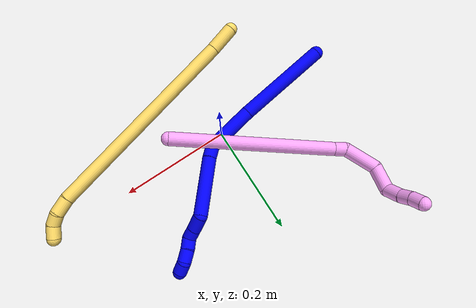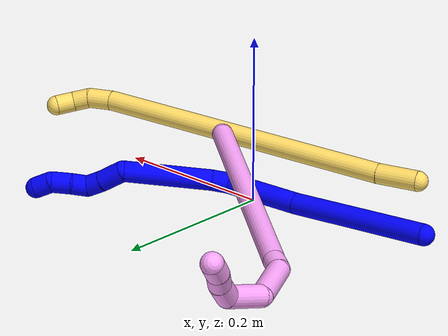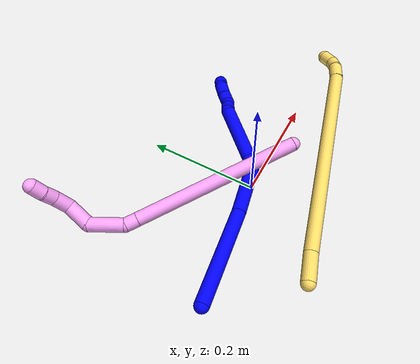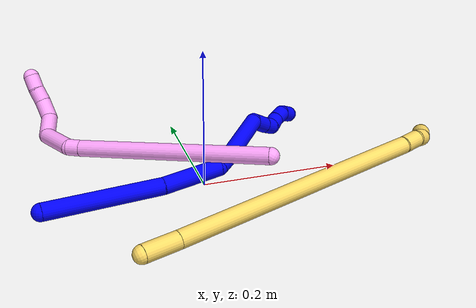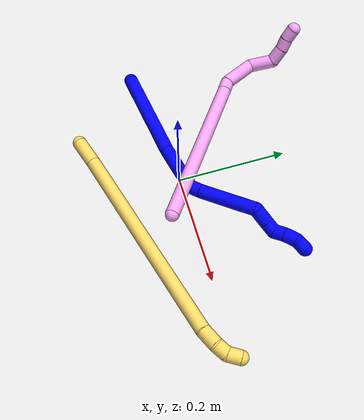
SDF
<sdf version="1.7">
 <world name="default">
  <model name="photoneo_s_sensor">
   <static>1</static>
   <pose>0 0 2 1.57079 1.57079 3.14159</pose>
   <link name="link">
    <inertial><mass>0.1</mass></inertial>
    <sensor name="sensor" type="depth">
     <update_rate>30</update_rate>
     <camera>
      <horizontal_fov>1.22</horizontal_fov>
      <image><width>1920</width><height>1200</height><format>B8G8R8</format></image>
      <clip><near>0.1</near><far>4</far></clip>
      <depth_camera><output>points</output></depth_camera>
     </camera>
     <plugin name="camera_plugin" filename="libgazebo_ros_depth_camera.so">
      <baseline>0.2</baseline>
      <alwaysOn>1</alwaysOn>
      <updateRate>0.0</updateRate>
      <cameraName>camera_ir</cameraName>
      <imageTopicName>/camera/color/image_raw</imageTopicName>
      <cameraInfoTopicName>/camera/color/camera_info</cameraInfoTopicName>
      <depthImageTopicName>/camera/depth/image_raw</depthImageTopicName>
      <depthImageCameraInfoTopicName>/camera/depth/camera_info</depthImageCameraInfoTopicName>
      <pointCloudTopicName>/camera/depth/points</pointCloudTopicName>
      <frameName>fr_optical</frameName>
      <pointCloudCutoff>0.1</pointCloudCutoff>
      <pointCloudCutoffMax>2.0</pointCloudCutoffMax>
      <distortionK1>0</distortionK1>
      <distortionK2>0</distortionK2>
      <distortionK3>0</distortionK3>
      <distortionT1>0</distortionT1>
      <distortionT2>0</distortionT2>
      <CxPrime>0</CxPrime>
      <Cx>0</Cx>
      <Cy>0</Cy>
      <focalLength>0</focalLength>
      <hackBaseline>0</hackBaseline>
     </plugin>
    </sensor>
   </link>
  </model>
  <model name="bin">
   <static>1</static>
   <link name="bottom">
    <collision name="collision-bottom">
     <pose>0 0 -0.01 0 -0 0</pose>
     <geometry><box><size>0.8 0.6 0.02</size></box></geometry>
     <surface>
      <friction><ode><mu>100</mu><mu2>100</mu2></ode></friction>
      <contact><collide_bitmask>65535</collide_bitmask></contact>
     </surface>
    </collision>
   </link>
   <link name="west_wall">
    <collision name="collision-west_wall">
     <pose>-0.41 0 0.1 0 -0 0</pose>
     <geometry><box><size>0.02 0.6 0.2</size></box></geometry>
     <surface>
      <friction><ode><mu>100</mu><mu2>100</mu2></ode></friction>
      <contact><collide_bitmask>65535</collide_bitmask></contact>
     </surface>
    </collision>
   </link>
   <link name="east_wall">
    <collision name="collision-east_wall">
     <pose>0.41 0 0.1 0 -0 0</pose>
     <geometry><box><size>0.02 0.6 0.2</size></box></geometry>
     <surface>
      <friction><ode><mu>100</mu><mu2>100</mu2></ode></friction>
      <contact><collide_bitmask>65535</collide_bitmask></contact>
     </surface>
    </collision>
   </link>
   <link name="south_wall">
    <collision name="collision-south_wall">
     <pose>0 -0.31 0.1 0 -0 0</pose>
     <geometry><box><size>0.8 0.02 0.2</size></box></geometry>
     <surface>
      <friction><ode><mu>100</mu><mu2>100</mu2></ode></friction>
      <contact><collide_bitmask>65535</collide_bitmask></contact>
     </surface>
    </collision>
   </link>
   <link name="north_wall">
    <collision name="collision-north_wall">
     <pose>0 0.31 0.1 0 -0 0</pose>
     <geometry><box><size>0.8 0.02 0.2</size></box></geometry>
     <surface>
      <friction><ode><mu>100</mu><mu2>100</mu2></ode></friction>
      <contact><collide_bitmask>65535</collide_bitmask></contact>
     </surface>
    </collision>
   </link>
  </model>
  <model name="1">
   <static>0</static>
   <link name="1">
    <collision name="collision-cylinder-e_1_1_4">
     <pose>0.058912 0.04021 0.046118 -0.717067 0.766466 -0.299889</pose>
     <geometry><cylinder><radius>0.0125</radius><length>0.169873</length></cylinder></geometry>
     <surface>
      <friction><ode><mu>1.16</mu><mu2>1.16</mu2><slip1>0</slip1><slip2>0</slip2></ode></friction>
      <contact><ode><kp>1e+06</kp><kd>1</kd><max_vel>0</max_vel><min_depth>0.001</min_depth></ode></contact>
     </surface>
    </collision>
    <visual name="visual-cylinder-e_1_1_4">
     <pose>0.058912 0.04021 0.046118 -0.717067 0.766466 -0.299889</pose>
     <geometry><cylinder><radius>0.0125</radius><length>0.169873</length></cylinder></geometry>
     <material><ambient>0 0 1 1</ambient></material>
    </visual>
    <collision name="collision-cylinder-e_2_4_5">
     <pose>0.147063 0.10567 0.114697 -0.843789 0.713265 -0.331381</pose>
     <geometry><cylinder><radius>0.0125</radius><length>0.089377</length></cylinder></geometry>
     <surface>
      <friction><ode><mu>1.16</mu><mu2>1.16</mu2><slip1>0</slip1><slip2>0</slip2></ode></friction>
      <contact><ode><kp>1e+06</kp><kd>1</kd><max_vel>0</max_vel><min_depth>0.001</min_depth></ode></contact>
     </surface>
    </collision>
    <visual name="visual-cylinder-e_2_4_5">
     <pose>0.147063 0.10567 0.114697 -0.843789 0.713265 -0.331381</pose>
     <geometry><cylinder><radius>0.0125</radius><length>0.089377</length></cylinder></geometry>
     <material><ambient>0 0 1 1</ambient></material>
    </visual>
    <collision name="collision-cylinder-e_3_5_6">
     <pose>0.183298 0.139753 0.13734 -1.55015 0.669724 -0.657011</pose>
     <geometry><cylinder><radius>0.0125</radius><length>0.022537</length></cylinder></geometry>
     <surface>
      <friction><ode><mu>1.16</mu><mu2>1.16</mu2><slip1>0</slip1><slip2>0</slip2></ode></friction>
      <contact><ode><kp>1e+06</kp><kd>1</kd><max_vel>0</max_vel><min_depth>0.001</min_depth></ode></contact>
     </surface>
    </collision>
    <visual name="visual-cylinder-e_3_5_6">
     <pose>0.183298 0.139753 0.13734 -1.55015 0.669724 -0.657011</pose>
     <geometry><cylinder><radius>0.0125</radius><length>0.022537</length></cylinder></geometry>
     <material><ambient>0 0 1 1</ambient></material>
    </visual>
    <collision name="collision-cylinder-e_4_6_7">
     <pose>0.223276 0.188843 0.132211 -1.70199 0.682156 -0.769383</pose>
     <geometry><cylinder><radius>0.0125</radius><length>0.104628</length></cylinder></geometry>
     <surface>
      <friction><ode><mu>1.16</mu><mu2>1.16</mu2><slip1>0</slip1><slip2>0</slip2></ode></friction>
      <contact><ode><kp>1e+06</kp><kd>1</kd><max_vel>0</max_vel><min_depth>0.001</min_depth></ode></contact>
     </surface>
    </collision>
    <visual name="visual-cylinder-e_4_6_7">
     <pose>0.223276 0.188843 0.132211 -1.70199 0.682156 -0.769383</pose>
     <geometry><cylinder><radius>0.0125</radius><length>0.104628</length></cylinder></geometry>
     <material><ambient>0 0 1 1</ambient></material>
    </visual>
    <collision name="collision-cylinder-e_5_7_8">
     <pose>0.270756 0.23144 0.128522 -0.964111 1.37692 -0.813016</pose>
     <geometry><cylinder><radius>0.0125</radius><length>0.02955</length></cylinder></geometry>
     <surface>
      <friction><ode><mu>1.16</mu><mu2>1.16</mu2><slip1>0</slip1><slip2>0</slip2></ode></friction>
      <contact><ode><kp>1e+06</kp><kd>1</kd><max_vel>0</max_vel><min_depth>0.001</min_depth></ode></contact>
     </surface>
    </collision>
    <visual name="visual-cylinder-e_5_7_8">
     <pose>0.270756 0.23144 0.128522 -0.964111 1.37692 -0.813016</pose>
     <geometry><cylinder><radius>0.0125</radius><length>0.02955</length></cylinder></geometry>
     <material><ambient>0 0 1 1</ambient></material>
    </visual>
    <collision name="collision-cylinder-e_6_8_9">
     <pose>0.294944 0.236214 0.131722 -0.99593 1.27986 -0.76914</pose>
     <geometry><cylinder><radius>0.0125</radius><length>0.020228</length></cylinder></geometry>
     <surface>
      <friction><ode><mu>1.16</mu><mu2>1.16</mu2><slip1>0</slip1><slip2>0</slip2></ode></friction>
      <contact><ode><kp>1e+06</kp><kd>1</kd><max_vel>0</max_vel><min_depth>0.001</min_depth></ode></contact>
     </surface>
    </collision>
    <visual name="visual-cylinder-e_6_8_9">
     <pose>0.294944 0.236214 0.131722 -0.99593 1.27986 -0.76914</pose>
     <geometry><cylinder><radius>0.0125</radius><length>0.020228</length></cylinder></geometry>
     <material><ambient>0 0 1 1</ambient></material>
    </visual>
    <collision name="collision-cylinder-e_7_9_10">
     <pose>0.310553 0.246689 0.132164 -1.71104 0.629977 -0.717656</pose>
     <geometry><cylinder><radius>0.0125</radius><length>0.020099</length></cylinder></geometry>
     <surface>
      <friction><ode><mu>1.16</mu><mu2>1.16</mu2><slip1>0</slip1><slip2>0</slip2></ode></friction>
      <contact><ode><kp>1e+06</kp><kd>1</kd><max_vel>0</max_vel><min_depth>0.001</min_depth></ode></contact>
     </surface>
    </collision>
    <visual name="visual-cylinder-e_7_9_10">
     <pose>0.310553 0.246689 0.132164 -1.71104 0.629977 -0.717656</pose>
     <geometry><cylinder><radius>0.0125</radius><length>0.020099</length></cylinder></geometry>
     <material><ambient>0 0 1 1</ambient></material>
    </visual>
    <collision name="collision-cylinder-e_8_10_11">
     <pose>0.324403 0.263074 0.131062 -1.56685 0.759912 -0.757195</pose>
     <geometry><cylinder><radius>0.0125</radius><length>0.023022</length></cylinder></geometry>
     <surface>
      <friction><ode><mu>1.16</mu><mu2>1.16</mu2><slip1>0</slip1><slip2>0</slip2></ode></friction>
      <contact><ode><kp>1e+06</kp><kd>1</kd><max_vel>0</max_vel><min_depth>0.001</min_depth></ode></contact>
     </surface>
    </collision>
    <visual name="visual-cylinder-e_8_10_11">
     <pose>0.324403 0.263074 0.131062 -1.56685 0.759912 -0.757195</pose>
     <geometry><cylinder><radius>0.0125</radius><length>0.023022</length></cylinder></geometry>
     <material><ambient>0 0 1 1</ambient></material>
    </visual>
    <collision name="collision-cylinder-e_9_11_2">
     <pose>0.342251 0.274214 0.131978 -1.2651 1.28337 -1.00214</pose>
     <geometry><cylinder><radius>0.0125</radius><length>0.020684</length></cylinder></geometry>
     <surface>
      <friction><ode><mu>1.16</mu><mu2>1.16</mu2><slip1>0</slip1><slip2>0</slip2></ode></friction>
      <contact><ode><kp>1e+06</kp><kd>1</kd><max_vel>0</max_vel><min_depth>0.001</min_depth></ode></contact>
     </surface>
    </collision>
    <visual name="visual-cylinder-e_9_11_2">
     <pose>0.342251 0.274214 0.131978 -1.2651 1.28337 -1.00214</pose>
     <geometry><cylinder><radius>0.0125</radius><length>0.020684</length></cylinder></geometry>
     <material><ambient>0 0 1 1</ambient></material>
    </visual>
    <collision name="collision-sphere-2">
     <pose>0.352169 0.27701 0.13286 0 -0 0</pose>
     <geometry><sphere><radius>0.0125</radius></sphere></geometry>
     <surface>
      <friction><ode><mu>1.16</mu><mu2>1.16</mu2><slip1>0</slip1><slip2>0</slip2></ode></friction>
      <contact><ode><kp>1e+06</kp><kd>1</kd><max_vel>0</max_vel><min_depth>0.001</min_depth></ode></contact>
     </surface>
    </collision>
    <visual name="visual-sphere-2">
     <pose>0.352169 0.27701 0.13286 0 -0 0</pose>
     <geometry><sphere><radius>0.0125</radius></sphere></geometry>
     <material><ambient>0 0 1 1</ambient></material>
    </visual>
    <collision name="collision-sphere-11">
     <pose>0.332333 0.271418 0.131095 0 -0 0</pose>
     <geometry><sphere><radius>0.0125</radius></sphere></geometry>
     <surface>
      <friction><ode><mu>1.16</mu><mu2>1.16</mu2><slip1>0</slip1><slip2>0</slip2></ode></friction>
      <contact><ode><kp>1e+06</kp><kd>1</kd><max_vel>0</max_vel><min_depth>0.001</min_depth></ode></contact>
     </surface>
    </collision>
    <visual name="visual-sphere-11">
     <pose>0.332333 0.271418 0.131095 0 -0 0</pose>
     <geometry><sphere><radius>0.0125</radius></sphere></geometry>
     <material><ambient>0 0 1 1</ambient></material>
    </visual>
    <collision name="collision-sphere-10">
     <pose>0.316474 0.25473 0.131029 0 -0 0</pose>
     <geometry><sphere><radius>0.0125</radius></sphere></geometry>
     <surface>
      <friction><ode><mu>1.16</mu><mu2>1.16</mu2><slip1>0</slip1><slip2>0</slip2></ode></friction>
      <contact><ode><kp>1e+06</kp><kd>1</kd><max_vel>0</max_vel><min_depth>0.001</min_depth></ode></contact>
     </surface>
    </collision>
    <visual name="visual-sphere-10">
     <pose>0.316474 0.25473 0.131029 0 -0 0</pose>
     <geometry><sphere><radius>0.0125</radius></sphere></geometry>
     <material><ambient>0 0 1 1</ambient></material>
    </visual>
    <collision name="collision-sphere-9">
     <pose>0.304633 0.238648 0.133299 0 -0 0</pose>
     <geometry><sphere><radius>0.0125</radius></sphere></geometry>
     <surface>
      <friction><ode><mu>1.16</mu><mu2>1.16</mu2><slip1>0</slip1><slip2>0</slip2></ode></friction>
      <contact><ode><kp>1e+06</kp><kd>1</kd><max_vel>0</max_vel><min_depth>0.001</min_depth></ode></contact>
     </surface>
    </collision>
    <visual name="visual-sphere-9">
     <pose>0.304633 0.238648 0.133299 0 -0 0</pose>
     <geometry><sphere><radius>0.0125</radius></sphere></geometry>
     <material><ambient>0 0 1 1</ambient></material>
    </visual>
    <collision name="collision-sphere-4">
     <pose>0.117823 0.080419 0.092235 0 -0 0</pose>
     <geometry><sphere><radius>0.0125</radius></sphere></geometry>
     <surface>
      <friction><ode><mu>1.16</mu><mu2>1.16</mu2><slip1>0</slip1><slip2>0</slip2></ode></friction>
      <contact><ode><kp>1e+06</kp><kd>1</kd><max_vel>0</max_vel><min_depth>0.001</min_depth></ode></contact>
     </surface>
    </collision>
    <visual name="visual-sphere-4">
     <pose>0.117823 0.080419 0.092235 0 -0 0</pose>
     <geometry><sphere><radius>0.0125</radius></sphere></geometry>
     <material><ambient>0 0 1 1</ambient></material>
    </visual>
    <collision name="collision-sphere-1">
     <geometry><sphere><radius>0.0125</radius></sphere></geometry>
     <surface>
      <friction><ode><mu>1.16</mu><mu2>1.16</mu2><slip1>0</slip1><slip2>0</slip2></ode></friction>
      <contact><ode><kp>1e+06</kp><kd>1</kd><max_vel>0</max_vel><min_depth>0.001</min_depth></ode></contact>
     </surface>
    </collision>
    <visual name="visual-sphere-1">
     <geometry><sphere><radius>0.0125</radius></sphere></geometry>
     <material><ambient>0 0 1 1</ambient></material>
    </visual>
    <collision name="collision-sphere-8">
     <pose>0.285255 0.233779 0.130145 0 -0 0</pose>
     <geometry><sphere><radius>0.0125</radius></sphere></geometry>
     <surface>
      <friction><ode><mu>1.16</mu><mu2>1.16</mu2><slip1>0</slip1><slip2>0</slip2></ode></friction>
      <contact><ode><kp>1e+06</kp><kd>1</kd><max_vel>0</max_vel><min_depth>0.001</min_depth></ode></contact>
     </surface>
    </collision>
    <visual name="visual-sphere-8">
     <pose>0.285255 0.233779 0.130145 0 -0 0</pose>
     <geometry><sphere><radius>0.0125</radius></sphere></geometry>
     <material><ambient>0 0 1 1</ambient></material>
    </visual>
    <collision name="collision-sphere-5">
     <pose>0.176303 0.13092 0.137158 0 -0 0</pose>
     <geometry><sphere><radius>0.0125</radius></sphere></geometry>
     <surface>
      <friction><ode><mu>1.16</mu><mu2>1.16</mu2><slip1>0</slip1><slip2>0</slip2></ode></friction>
      <contact><ode><kp>1e+06</kp><kd>1</kd><max_vel>0</max_vel><min_depth>0.001</min_depth></ode></contact>
     </surface>
    </collision>
    <visual name="visual-sphere-5">
     <pose>0.176303 0.13092 0.137158 0 -0 0</pose>
     <geometry><sphere><radius>0.0125</radius></sphere></geometry>
     <material><ambient>0 0 1 1</ambient></material>
    </visual>
    <collision name="collision-sphere-6">
     <pose>0.190293 0.148585 0.137523 0 -0 0</pose>
     <geometry><sphere><radius>0.0125</radius></sphere></geometry>
     <surface>
      <friction><ode><mu>1.16</mu><mu2>1.16</mu2><slip1>0</slip1><slip2>0</slip2></ode></friction>
      <contact><ode><kp>1e+06</kp><kd>1</kd><max_vel>0</max_vel><min_depth>0.001</min_depth></ode></contact>
     </surface>
    </collision>
    <visual name="visual-sphere-6">
     <pose>0.190293 0.148585 0.137523 0 -0 0</pose>
     <geometry><sphere><radius>0.0125</radius></sphere></geometry>
     <material><ambient>0 0 1 1</ambient></material>
    </visual>
    <collision name="collision-sphere-7">
     <pose>0.256258 0.229101 0.126899 0 -0 0</pose>
     <geometry><sphere><radius>0.0125</radius></sphere></geometry>
     <surface>
      <friction><ode><mu>1.16</mu><mu2>1.16</mu2><slip1>0</slip1><slip2>0</slip2></ode></friction>
      <contact><ode><kp>1e+06</kp><kd>1</kd><max_vel>0</max_vel><min_depth>0.001</min_depth></ode></contact>
     </surface>
    </collision>
    <visual name="visual-sphere-7">
     <pose>0.256258 0.229101 0.126899 0 -0 0</pose>
     <geometry><sphere><radius>0.0125</radius></sphere></geometry>
     <material><ambient>0 0 1 1</ambient></material>
    </visual>
    <inertial>
     <pose>0.1708 0.134974 0.099759 0 -0 0</pose>
     <mass>0.5</mass>
     <inertia>
      <ixx>0.000256</ixx>
      <ixy>0</ixy>
      <ixz>0</ixz>
      <iyy>0.000307</iyy>
      <iyz>0</iyz>
      <izz>-0.000705</izz>
     </inertia>
    </inertial>
   </link>
   <pose>-0.228971 -0.03038 0.015126 1.37428 0.709518 0.600783</pose>
  </model>
  <model name="4">
   <static>0</static>
   <link name="4">
    <collision name="collision-cylinder-e_1_1_4">
     <pose>-0.082282 0.023158 0.1216 -0.18819 -0.586653 0.056994</pose>
     <geometry><cylinder><radius>0.0125</radius><length>0.297276</length></cylinder></geometry>
     <surface>
      <friction><ode><mu>1.16</mu><mu2>1.16</mu2><slip1>0</slip1><slip2>0</slip2></ode></friction>
      <contact><ode><kp>1e+06</kp><kd>1</kd><max_vel>0</max_vel><min_depth>0.001</min_depth></ode></contact>
     </surface>
    </collision>
    <visual name="visual-cylinder-e_1_1_4">
     <pose>-0.082282 0.023158 0.1216 -0.18819 -0.586653 0.056994</pose>
     <geometry><cylinder><radius>0.0125</radius><length>0.297276</length></cylinder></geometry>
     <material><ambient>1 0.65098 0.996078 1</ambient></material>
    </visual>
    <collision name="collision-cylinder-e_2_4_5">
     <pose>-0.169957 0.047648 0.252334 -0.14478 -0.528655 0.03925</pose>
     <geometry><cylinder><radius>0.0125</radius><length>0.021381</length></cylinder></geometry>
     <surface>
      <friction><ode><mu>1.16</mu><mu2>1.16</mu2><slip1>0</slip1><slip2>0</slip2></ode></friction>
      <contact><ode><kp>1e+06</kp><kd>1</kd><max_vel>0</max_vel><min_depth>0.001</min_depth></ode></contact>
     </surface>
    </collision>
    <visual name="visual-cylinder-e_2_4_5">
     <pose>-0.169957 0.047648 0.252334 -0.14478 -0.528655 0.03925</pose>
     <geometry><cylinder><radius>0.0125</radius><length>0.021381</length></cylinder></geometry>
     <material><ambient>1 0.65098 0.996078 1</ambient></material>
    </visual>
    <collision name="collision-cylinder-e_3_5_6">
     <pose>-0.186835 0.067805 0.283217 -0.713485 -0.379922 0.143076</pose>
     <geometry><cylinder><radius>0.0125</radius><length>0.061945</length></cylinder></geometry>
     <surface>
      <friction><ode><mu>1.16</mu><mu2>1.16</mu2><slip1>0</slip1><slip2>0</slip2></ode></friction>
      <contact><ode><kp>1e+06</kp><kd>1</kd><max_vel>0</max_vel><min_depth>0.001</min_depth></ode></contact>
     </surface>
    </collision>
    <visual name="visual-cylinder-e_3_5_6">
     <pose>-0.186835 0.067805 0.283217 -0.713485 -0.379922 0.143076</pose>
     <geometry><cylinder><radius>0.0125</radius><length>0.061945</length></cylinder></geometry>
     <material><ambient>1 0.65098 0.996078 1</ambient></material>
    </visual>
    <collision name="collision-cylinder-e_4_6_7">
     <pose>-0.194959 0.107241 0.313324 -1.1855 0.150008 -0.101141</pose>
     <geometry><cylinder><radius>0.0125</radius><length>0.044989</length></cylinder></geometry>
     <surface>
      <friction><ode><mu>1.16</mu><mu2>1.16</mu2><slip1>0</slip1><slip2>0</slip2></ode></friction>
      <contact><ode><kp>1e+06</kp><kd>1</kd><max_vel>0</max_vel><min_depth>0.001</min_depth></ode></contact>
     </surface>
    </collision>
    <visual name="visual-cylinder-e_4_6_7">
     <pose>-0.194959 0.107241 0.313324 -1.1855 0.150008 -0.101141</pose>
     <geometry><cylinder><radius>0.0125</radius><length>0.044989</length></cylinder></geometry>
     <material><ambient>1 0.65098 0.996078 1</ambient></material>
    </visual>
    <collision name="collision-cylinder-e_5_7_8">
     <pose>-0.184557 0.133787 0.33371 -0.458395 0.483479 -0.114917</pose>
     <geometry><cylinder><radius>0.0125</radius><length>0.030293</length></cylinder></geometry>
     <surface>
      <friction><ode><mu>1.16</mu><mu2>1.16</mu2><slip1>0</slip1><slip2>0</slip2></ode></friction>
      <contact><ode><kp>1e+06</kp><kd>1</kd><max_vel>0</max_vel><min_depth>0.001</min_depth></ode></contact>
     </surface>
    </collision>
    <visual name="visual-cylinder-e_5_7_8">
     <pose>-0.184557 0.133787 0.33371 -0.458395 0.483479 -0.114917</pose>
     <geometry><cylinder><radius>0.0125</radius><length>0.030293</length></cylinder></geometry>
     <material><ambient>1 0.65098 0.996078 1</ambient></material>
    </visual>
    <collision name="collision-cylinder-e_6_8_9">
     <pose>-0.172282 0.142041 0.354887 -0.248309 0.50616 -0.064529</pose>
     <geometry><cylinder><radius>0.0125</radius><length>0.02159</length></cylinder></geometry>
     <surface>
      <friction><ode><mu>1.16</mu><mu2>1.16</mu2><slip1>0</slip1><slip2>0</slip2></ode></friction>
      <contact><ode><kp>1e+06</kp><kd>1</kd><max_vel>0</max_vel><min_depth>0.001</min_depth></ode></contact>
     </surface>
    </collision>
    <visual name="visual-cylinder-e_6_8_9">
     <pose>-0.172282 0.142041 0.354887 -0.248309 0.50616 -0.064529</pose>
     <geometry><cylinder><radius>0.0125</radius><length>0.02159</length></cylinder></geometry>
     <material><ambient>1 0.65098 0.996078 1</ambient></material>
    </visual>
    <collision name="collision-cylinder-e_7_9_2">
     <pose>-0.161416 0.14854 0.372852 -0.442747 0.5237 -0.120489</pose>
     <geometry><cylinder><radius>0.0125</radius><length>0.022527</length></cylinder></geometry>
     <surface>
      <friction><ode><mu>1.16</mu><mu2>1.16</mu2><slip1>0</slip1><slip2>0</slip2></ode></friction>
      <contact><ode><kp>1e+06</kp><kd>1</kd><max_vel>0</max_vel><min_depth>0.001</min_depth></ode></contact>
     </surface>
    </collision>
    <visual name="visual-cylinder-e_7_9_2">
     <pose>-0.161416 0.14854 0.372852 -0.442747 0.5237 -0.120489</pose>
     <geometry><cylinder><radius>0.0125</radius><length>0.022527</length></cylinder></geometry>
     <material><ambient>1 0.65098 0.996078 1</ambient></material>
    </visual>
    <collision name="collision-sphere-2">
     <pose>-0.155783 0.152719 0.381665 0 -0 0</pose>
     <geometry><sphere><radius>0.0125</radius></sphere></geometry>
     <surface>
      <friction><ode><mu>1.16</mu><mu2>1.16</mu2><slip1>0</slip1><slip2>0</slip2></ode></friction>
      <contact><ode><kp>1e+06</kp><kd>1</kd><max_vel>0</max_vel><min_depth>0.001</min_depth></ode></contact>
     </surface>
    </collision>
    <visual name="visual-sphere-2">
     <pose>-0.155783 0.152719 0.381665 0 -0 0</pose>
     <geometry><sphere><radius>0.0125</radius></sphere></geometry>
     <material><ambient>1 0.65098 0.996078 1</ambient></material>
    </visual>
    <collision name="collision-sphere-9">
     <pose>-0.167049 0.144361 0.364039 0 -0 0</pose>
     <geometry><sphere><radius>0.0125</radius></sphere></geometry>
     <surface>
      <friction><ode><mu>1.16</mu><mu2>1.16</mu2><slip1>0</slip1><slip2>0</slip2></ode></friction>
      <contact><ode><kp>1e+06</kp><kd>1</kd><max_vel>0</max_vel><min_depth>0.001</min_depth></ode></contact>
     </surface>
    </collision>
    <visual name="visual-sphere-9">
     <pose>-0.167049 0.144361 0.364039 0 -0 0</pose>
     <geometry><sphere><radius>0.0125</radius></sphere></geometry>
     <material><ambient>1 0.65098 0.996078 1</ambient></material>
    </visual>
    <collision name="collision-sphere-4">
     <pose>-0.164565 0.046316 0.2432 0 -0 0</pose>
     <geometry><sphere><radius>0.0125</radius></sphere></geometry>
     <surface>
      <friction><ode><mu>1.16</mu><mu2>1.16</mu2><slip1>0</slip1><slip2>0</slip2></ode></friction>
      <contact><ode><kp>1e+06</kp><kd>1</kd><max_vel>0</max_vel><min_depth>0.001</min_depth></ode></contact>
     </surface>
    </collision>
    <visual name="visual-sphere-4">
     <pose>-0.164565 0.046316 0.2432 0 -0 0</pose>
     <geometry><sphere><radius>0.0125</radius></sphere></geometry>
     <material><ambient>1 0.65098 0.996078 1</ambient></material>
    </visual>
    <collision name="collision-sphere-1">
     <geometry><sphere><radius>0.0125</radius></sphere></geometry>
     <surface>
      <friction><ode><mu>1.16</mu><mu2>1.16</mu2><slip1>0</slip1><slip2>0</slip2></ode></friction>
      <contact><ode><kp>1e+06</kp><kd>1</kd><max_vel>0</max_vel><min_depth>0.001</min_depth></ode></contact>
     </surface>
    </collision>
    <visual name="visual-sphere-1">
     <geometry><sphere><radius>0.0125</radius></sphere></geometry>
     <material><ambient>1 0.65098 0.996078 1</ambient></material>
    </visual>
    <collision name="collision-sphere-8">
     <pose>-0.177516 0.139721 0.345735 0 -0 0</pose>
     <geometry><sphere><radius>0.0125</radius></sphere></geometry>
     <surface>
      <friction><ode><mu>1.16</mu><mu2>1.16</mu2><slip1>0</slip1><slip2>0</slip2></ode></friction>
      <contact><ode><kp>1e+06</kp><kd>1</kd><max_vel>0</max_vel><min_depth>0.001</min_depth></ode></contact>
     </surface>
    </collision>
    <visual name="visual-sphere-8">
     <pose>-0.177516 0.139721 0.345735 0 -0 0</pose>
     <geometry><sphere><radius>0.0125</radius></sphere></geometry>
     <material><ambient>1 0.65098 0.996078 1</ambient></material>
    </visual>
    <collision name="collision-sphere-5">
     <pose>-0.175349 0.04898 0.261469 0 -0 0</pose>
     <geometry><sphere><radius>0.0125</radius></sphere></geometry>
     <surface>
      <friction><ode><mu>1.16</mu><mu2>1.16</mu2><slip1>0</slip1><slip2>0</slip2></ode></friction>
      <contact><ode><kp>1e+06</kp><kd>1</kd><max_vel>0</max_vel><min_depth>0.001</min_depth></ode></contact>
     </surface>
    </collision>
    <visual name="visual-sphere-5">
     <pose>-0.175349 0.04898 0.261469 0 -0 0</pose>
     <geometry><sphere><radius>0.0125</radius></sphere></geometry>
     <material><ambient>1 0.65098 0.996078 1</ambient></material>
    </visual>
    <collision name="collision-sphere-6">
     <pose>-0.198321 0.08663 0.304965 0 -0 0</pose>
     <geometry><sphere><radius>0.0125</radius></sphere></geometry>
     <surface>
      <friction><ode><mu>1.16</mu><mu2>1.16</mu2><slip1>0</slip1><slip2>0</slip2></ode></friction>
      <contact><ode><kp>1e+06</kp><kd>1</kd><max_vel>0</max_vel><min_depth>0.001</min_depth></ode></contact>
     </surface>
    </collision>
    <visual name="visual-sphere-6">
     <pose>-0.198321 0.08663 0.304965 0 -0 0</pose>
     <geometry><sphere><radius>0.0125</radius></sphere></geometry>
     <material><ambient>1 0.65098 0.996078 1</ambient></material>
    </visual>
    <collision name="collision-sphere-7">
     <pose>-0.191598 0.127852 0.321684 0 -0 0</pose>
     <geometry><sphere><radius>0.0125</radius></sphere></geometry>
     <surface>
      <friction><ode><mu>1.16</mu><mu2>1.16</mu2><slip1>0</slip1><slip2>0</slip2></ode></friction>
      <contact><ode><kp>1e+06</kp><kd>1</kd><max_vel>0</max_vel><min_depth>0.001</min_depth></ode></contact>
     </surface>
    </collision>
    <visual name="visual-sphere-7">
     <pose>-0.191598 0.127852 0.321684 0 -0 0</pose>
     <geometry><sphere><radius>0.0125</radius></sphere></geometry>
     <material><ambient>1 0.65098 0.996078 1</ambient></material>
    </visual>
    <inertial>
     <pose>-0.122771 0.054787 0.198708 0 -0 0</pose>
     <mass>0.5</mass>
     <inertia>
      <ixx>0.001961</ixx>
      <ixy>0</ixy>
      <ixz>0</ixz>
      <iyy>0.002318</iyy>
      <iyz>0</iyz>
      <izz>0.000885</izz>
     </inertia>
    </inertial>
   </link>
   <pose>0.085124 -0.036457 0.051565 -0.158514 -1.08182 -0.332227</pose>
  </model>
  <model name="5">
   <static>0</static>
   <link name="5">
    <collision name="collision-cylinder-e_1_1_4">
     <pose>0.00969 -0.001319 0.023381 0.056374 0.392328 0.011205</pose>
     <geometry><cylinder><radius>0.0125</radius><length>0.050688</length></cylinder></geometry>
     <surface>
      <friction><ode><mu>1.16</mu><mu2>1.16</mu2><slip1>0</slip1><slip2>0</slip2></ode></friction>
      <contact><ode><kp>1e+06</kp><kd>1</kd><max_vel>0</max_vel><min_depth>0.001</min_depth></ode></contact>
     </surface>
    </collision>
    <visual name="visual-cylinder-e_1_1_4">
     <pose>0.00969 -0.001319 0.023381 0.056374 0.392328 0.011205</pose>
     <geometry><cylinder><radius>0.0125</radius><length>0.050688</length></cylinder></geometry>
     <material><ambient>1 0.858824 0.4 1</ambient></material>
    </visual>
    <collision name="collision-cylinder-e_2_4_5">
     <pose>0.077891 -0.010335 0.224134 0.043364 0.318356 0.006963</pose>
     <geometry><cylinder><radius>0.0125</radius><length>0.373863</length></cylinder></geometry>
     <surface>
      <friction><ode><mu>1.16</mu><mu2>1.16</mu2><slip1>0</slip1><slip2>0</slip2></ode></friction>
      <contact><ode><kp>1e+06</kp><kd>1</kd><max_vel>0</max_vel><min_depth>0.001</min_depth></ode></contact>
     </surface>
    </collision>
    <visual name="visual-cylinder-e_2_4_5">
     <pose>0.077891 -0.010335 0.224134 0.043364 0.318356 0.006963</pose>
     <geometry><cylinder><radius>0.0125</radius><length>0.373863</length></cylinder></geometry>
     <material><ambient>1 0.858824 0.4 1</ambient></material>
    </visual>
    <collision name="collision-cylinder-e_3_5_6">
     <pose>0.143495 -0.017492 0.414952 -0.040082 0.485144 -0.009919</pose>
     <geometry><cylinder><radius>0.0125</radius><length>0.030425</length></cylinder></geometry>
     <surface>
      <friction><ode><mu>1.16</mu><mu2>1.16</mu2><slip1>0</slip1><slip2>0</slip2></ode></friction>
      <contact><ode><kp>1e+06</kp><kd>1</kd><max_vel>0</max_vel><min_depth>0.001</min_depth></ode></contact>
     </surface>
    </collision>
    <visual name="visual-cylinder-e_3_5_6">
     <pose>0.143495 -0.017492 0.414952 -0.040082 0.485144 -0.009919</pose>
     <geometry><cylinder><radius>0.0125</radius><length>0.030425</length></cylinder></geometry>
     <material><ambient>1 0.858824 0.4 1</ambient></material>
    </visual>
    <collision name="collision-cylinder-e_4_6_7">
     <pose>0.158413 -0.017104 0.435801 0.020405 0.812852 0.008782</pose>
     <geometry><cylinder><radius>0.0125</radius><length>0.021544</length></cylinder></geometry>
     <surface>
      <friction><ode><mu>1.16</mu><mu2>1.16</mu2><slip1>0</slip1><slip2>0</slip2></ode></friction>
      <contact><ode><kp>1e+06</kp><kd>1</kd><max_vel>0</max_vel><min_depth>0.001</min_depth></ode></contact>
     </surface>
    </collision>
    <visual name="visual-cylinder-e_4_6_7">
     <pose>0.158413 -0.017104 0.435801 0.020405 0.812852 0.008782</pose>
     <geometry><cylinder><radius>0.0125</radius><length>0.021544</length></cylinder></geometry>
     <material><ambient>1 0.858824 0.4 1</ambient></material>
    </visual>
    <collision name="collision-cylinder-e_5_7_2">
     <pose>0.175655 -0.012996 0.44877 -0.653256 0.931133 -0.337158</pose>
     <geometry><cylinder><radius>0.0125</radius><length>0.02348</length></cylinder></geometry>
     <surface>
      <friction><ode><mu>1.16</mu><mu2>1.16</mu2><slip1>0</slip1><slip2>0</slip2></ode></friction>
      <contact><ode><kp>1e+06</kp><kd>1</kd><max_vel>0</max_vel><min_depth>0.001</min_depth></ode></contact>
     </surface>
    </collision>
    <visual name="visual-cylinder-e_5_7_2">
     <pose>0.175655 -0.012996 0.44877 -0.653256 0.931133 -0.337158</pose>
     <geometry><cylinder><radius>0.0125</radius><length>0.02348</length></cylinder></geometry>
     <material><ambient>1 0.858824 0.4 1</ambient></material>
    </visual>
    <collision name="collision-sphere-2">
     <pose>0.185074 -0.008737 0.454335 0 -0 0</pose>
     <geometry><sphere><radius>0.0125</radius></sphere></geometry>
     <surface>
      <friction><ode><mu>1.16</mu><mu2>1.16</mu2><slip1>0</slip1><slip2>0</slip2></ode></friction>
      <contact><ode><kp>1e+06</kp><kd>1</kd><max_vel>0</max_vel><min_depth>0.001</min_depth></ode></contact>
     </surface>
    </collision>
    <visual name="visual-sphere-2">
     <pose>0.185074 -0.008737 0.454335 0 -0 0</pose>
     <geometry><sphere><radius>0.0125</radius></sphere></geometry>
     <material><ambient>1 0.858824 0.4 1</ambient></material>
    </visual>
    <collision name="collision-sphere-7">
     <pose>0.166236 -0.017255 0.443205 0 -0 0</pose>
     <geometry><sphere><radius>0.0125</radius></sphere></geometry>
     <surface>
      <friction><ode><mu>1.16</mu><mu2>1.16</mu2><slip1>0</slip1><slip2>0</slip2></ode></friction>
      <contact><ode><kp>1e+06</kp><kd>1</kd><max_vel>0</max_vel><min_depth>0.001</min_depth></ode></contact>
     </surface>
    </collision>
    <visual name="visual-sphere-7">
     <pose>0.166236 -0.017255 0.443205 0 -0 0</pose>
     <geometry><sphere><radius>0.0125</radius></sphere></geometry>
     <material><ambient>1 0.858824 0.4 1</ambient></material>
    </visual>
    <collision name="collision-sphere-6">
     <pose>0.15059 -0.016953 0.428398 0 -0 0</pose>
     <geometry><sphere><radius>0.0125</radius></sphere></geometry>
     <surface>
      <friction><ode><mu>1.16</mu><mu2>1.16</mu2><slip1>0</slip1><slip2>0</slip2></ode></friction>
      <contact><ode><kp>1e+06</kp><kd>1</kd><max_vel>0</max_vel><min_depth>0.001</min_depth></ode></contact>
     </surface>
    </collision>
    <visual name="visual-sphere-6">
     <pose>0.15059 -0.016953 0.428398 0 -0 0</pose>
     <geometry><sphere><radius>0.0125</radius></sphere></geometry>
     <material><ambient>1 0.858824 0.4 1</ambient></material>
    </visual>
    <collision name="collision-sphere-5">
     <pose>0.136401 -0.018032 0.401505 0 -0 0</pose>
     <geometry><sphere><radius>0.0125</radius></sphere></geometry>
     <surface>
      <friction><ode><mu>1.16</mu><mu2>1.16</mu2><slip1>0</slip1><slip2>0</slip2></ode></friction>
      <contact><ode><kp>1e+06</kp><kd>1</kd><max_vel>0</max_vel><min_depth>0.001</min_depth></ode></contact>
     </surface>
    </collision>
    <visual name="visual-sphere-5">
     <pose>0.136401 -0.018032 0.401505 0 -0 0</pose>
     <geometry><sphere><radius>0.0125</radius></sphere></geometry>
     <material><ambient>1 0.858824 0.4 1</ambient></material>
    </visual>
    <collision name="collision-sphere-1">
     <geometry><sphere><radius>0.0125</radius></sphere></geometry>
     <surface>
      <friction><ode><mu>1.16</mu><mu2>1.16</mu2><slip1>0</slip1><slip2>0</slip2></ode></friction>
      <contact><ode><kp>1e+06</kp><kd>1</kd><max_vel>0</max_vel><min_depth>0.001</min_depth></ode></contact>
     </surface>
    </collision>
    <visual name="visual-sphere-1">
     <geometry><sphere><radius>0.0125</radius></sphere></geometry>
     <material><ambient>1 0.858824 0.4 1</ambient></material>
    </visual>
    <collision name="collision-sphere-4">
     <pose>0.01938 -0.002639 0.046762 0 -0 0</pose>
     <geometry><sphere><radius>0.0125</radius></sphere></geometry>
     <surface>
      <friction><ode><mu>1.16</mu><mu2>1.16</mu2><slip1>0</slip1><slip2>0</slip2></ode></friction>
      <contact><ode><kp>1e+06</kp><kd>1</kd><max_vel>0</max_vel><min_depth>0.001</min_depth></ode></contact>
     </surface>
    </collision>
    <visual name="visual-sphere-4">
     <pose>0.01938 -0.002639 0.046762 0 -0 0</pose>
     <geometry><sphere><radius>0.0125</radius></sphere></geometry>
     <material><ambient>1 0.858824 0.4 1</ambient></material>
    </visual>
    <inertial>
     <pose>0.083029 -0.010273 0.235063 0 -0 0</pose>
     <mass>0.5</mass>
     <inertia>
      <ixx>0.00421</ixx>
      <ixy>0</ixy>
      <ixz>0</ixz>
      <iyy>0.004413</iyy>
      <iyz>0</iyz>
      <izz>-0.001162</izz>
     </inertia>
    </inertial>
   </link>
   <pose>-0.121486 -0.156105 0.012339 1.11429 0.725283 1.32238</pose>
  </model>
 </world>
</sdf>
